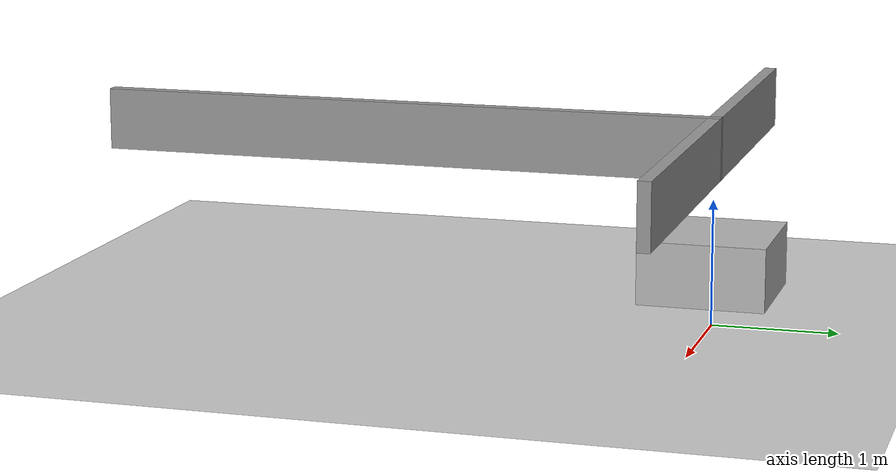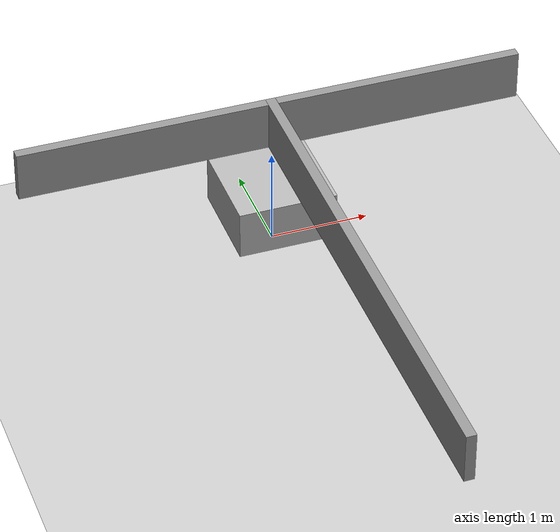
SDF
<sdf version='1.6'>
  <world name='default'>
    <!-- Lighting -->
    <light name='sun' type='directional'>
      <cast_shadows>1</cast_shadows>
      <pose frame=''>0 0 10 0 -0 0</pose>
      <diffuse>0.8 0.8 0.8 1</diffuse>
      <specular>0.1 0.1 0.1 1</specular>
      <attenuation>
        <range>1000</range>
        <constant>0.9</constant>
        <linear>0.01</linear>
        <quadratic>0.001</quadratic>
      </attenuation>
      <direction>-0.5 0.5 -1</direction>
    </light>

    <!-- Ground Plane -->
    <model name='ground_plane'>
      <static>1</static>
      <link name='link'>
        <collision name='collision'>
          <geometry>
            <plane>
              <normal>0 0 1</normal>
              <size>100 100</size>
            </plane>
          </geometry>
        </collision>
        <visual name='visual'>
          <geometry>
            <plane>
              <normal>0 0 1</normal>
              <size>100 100</size>
            </plane>
          </geometry>
          <material>
            <script>
              <uri>file://media/materials/scripts/gazebo.material</uri>
              <name>Gazebo/Grey</name>
            </script>
          </material>
        </visual>
      </link>
    </model>

    <!-- Physics Configuration -->
    <physics name='default_physics' default='0' type='ode'>
      <max_step_size>0.001</max_step_size>
      <real_time_factor>1</real_time_factor>
      <real_time_update_rate>1000</real_time_update_rate>
    </physics>

    <!-- Example Wall Models -->
    <model name='grey_wall'>
      <static>1</static>
      <link name='link'>
        <pose frame=''>0 0 1.4 0 -0 0</pose>
        <collision name='collision'>
          <geometry>
            <box>
              <size>5.1 0.1 0.5</size>
            </box>
          </geometry>
        </collision>
        <visual name='visual'>
          <geometry>
            <box>
              <size>5.1 0.1 0.5</size>
            </box>
          </geometry>
          <material>
            <script>
              <uri>model://grey_wall/materials/scripts</uri>
              <uri>model://grey_wall/materials/textures</uri>
              <name>vrc/grey_wall</name>
            </script>
          </material>
        </visual>
      </link>
    </model>

    <!-- Add Multiple Walls -->
    <model name='grey_wall_0'>
      <static>1</static>
      <link name='link'>
        <pose frame=''>0 -2.5 1.4 0 -0 1.57</pose>
        <collision name='collision'>
          <geometry>
            <box>
              <size>5.1 0.1 0.5</size>
            </box>
          </geometry>
        </collision>
        <visual name='visual'>
          <geometry>
            <box>
              <size>5.1 0.1 0.5</size>
            </box>
          </geometry>
          <material>
            <script>
              <uri>model://grey_wall/materials/scripts</uri>
              <uri>model://grey_wall/materials/textures</uri>
              <name>vrc/grey_wall</name>
            </script>
          </material>
        </visual>
      </link>
    </model>

    <!-- Example Robot Model with ROS 2 Plugin -->
    <model name='example_robot'>
      <static>0</static>
      <pose frame=''>0 0 0.5 0 0 0</pose>
      <link name='base_link'>
        <visual name='base_visual'>
          <geometry>
            <box>
              <size>1 1 0.5</size>
            </box>
          </geometry>
        </visual>
        <collision name='base_collision'>
          <geometry>
            <box>
              <size>1 1 0.5</size>
            </box>
          </geometry>
        </collision>
      </link>
      <plugin name='diff_drive_controller' filename='libgazebo_ros_diff_drive.so'>
        <robotNamespace>/example_robot</robotNamespace>
        <command_topic>/cmd_vel</command_topic>
        <odom_topic>/odom</odom_topic>
        <left_joint>left_wheel_joint</left_joint>
        <right_joint>right_wheel_joint</right_joint>
      </plugin>
    </model>

    <!-- ROS 2 Control Plugin -->
    <plugin name='ros2_control' filename='libgazebo_ros_control.so'>
      <robotNamespace>/</robotNamespace>
    </plugin>
  </world>
</sdf>
